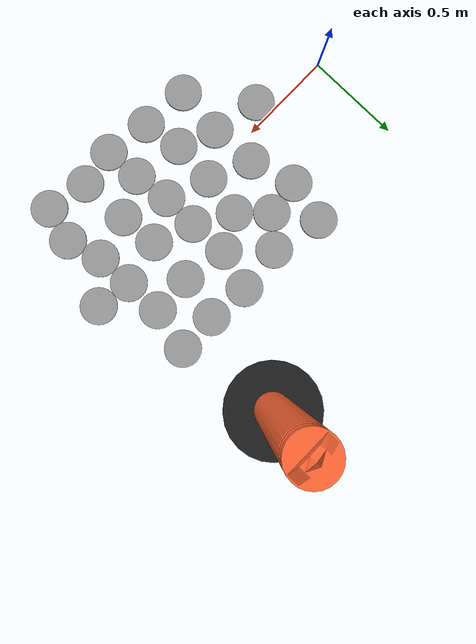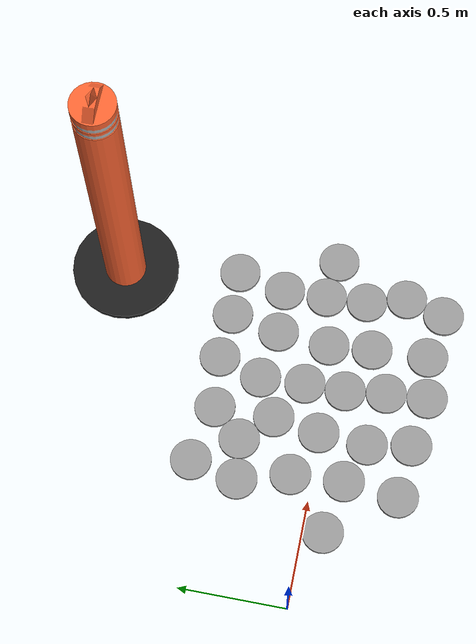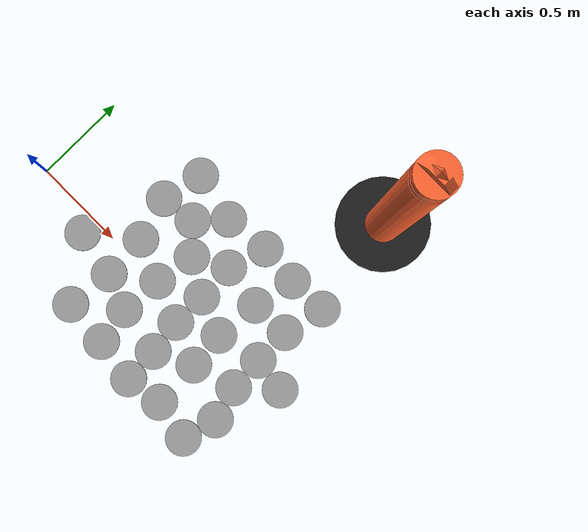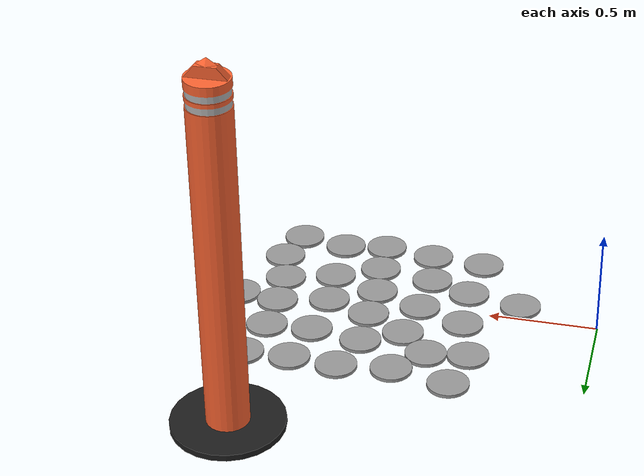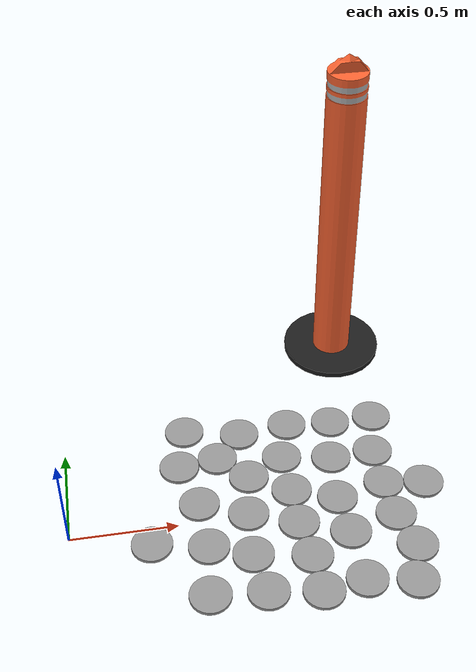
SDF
<sdf version="1.6">
 <world name="default">
  <model name="pylon_orange">
   <include><uri>model://pylon_orange</uri></include>
   <pose>1.44449 1.05156 0 0 0 -8.1e-05</pose>
  </model>
  <model name="unit_cylinder_clone_clone_123">
   <pose>0.369188 -0.09185 0.008108 0 -0 0</pose>
   <link name="link">
    <inertial>
     <mass>1</mass>
     <inertia><ixx>0.145833</ixx><ixy>0</ixy><ixz>0</ixz><iyy>0.145833</iyy><iyz>0</iyz><izz>0.125</izz></inertia>
    </inertial>
    <collision name="collision">
     <geometry><cylinder><radius>0.0950718</radius><length>0.0162339</length></cylinder></geometry>
    </collision>
    <visual name="visual">
     <geometry><cylinder><radius>0.0950718</radius><length>0.0162339</length></cylinder></geometry>
     <material>
      <script><name>Gazebo/Grey</name><uri>file://media/materials/scripts/gazebo.material</uri></script>
     </material>
    </visual>
   </link>
  </model>
  <model name="unit_cylinder_clone_clone_125">
   <pose>0.594038 -0.397589 0.008111 0 -0 0</pose>
   <link name="link">
    <inertial>
     <mass>1</mass>
     <inertia><ixx>0.145833</ixx><ixy>0</ixy><ixz>0</ixz><iyy>0.145833</iyy><iyz>0</iyz><izz>0.125</izz></inertia>
    </inertial>
    <collision name="collision">
     <geometry><cylinder><radius>0.0950718</radius><length>0.0162339</length></cylinder></geometry>
    </collision>
    <visual name="visual">
     <geometry><cylinder><radius>0.0950718</radius><length>0.0162339</length></cylinder></geometry>
     <material>
      <script><name>Gazebo/Grey</name><uri>file://media/materials/scripts/gazebo.material</uri></script>
     </material>
    </visual>
   </link>
  </model>
  <model name="unit_cylinder_clone_clone_126">
   <pose>0.621231 -0.144033 0.008107 0 -0 0</pose>
   <link name="link">
    <inertial>
     <mass>1</mass>
     <inertia><ixx>0.145833</ixx><ixy>0</ixy><ixz>0</ixz><iyy>0.145833</iyy><iyz>0</iyz><izz>0.125</izz></inertia>
    </inertial>
    <collision name="collision">
     <geometry><cylinder><radius>0.0950718</radius><length>0.0162339</length></cylinder></geometry>
    </collision>
    <visual name="visual">
     <geometry><cylinder><radius>0.0950718</radius><length>0.0162339</length></cylinder></geometry>
     <material>
      <script><name>Gazebo/Grey</name><uri>file://media/materials/scripts/gazebo.material</uri></script>
     </material>
    </visual>
   </link>
  </model>
  <model name="unit_cylinder_clone_clone_127">
   <pose>0.607874 0.101254 0.008111 0 -0 0</pose>
   <link name="link">
    <inertial>
     <mass>1</mass>
     <inertia><ixx>0.145833</ixx><ixy>0</ixy><ixz>0</ixz><iyy>0.145833</iyy><iyz>0</iyz><izz>0.125</izz></inertia>
    </inertial>
    <collision name="collision">
     <geometry><cylinder><radius>0.0950718</radius><length>0.0162339</length></cylinder></geometry>
    </collision>
    <visual name="visual">
     <geometry><cylinder><radius>0.0950718</radius><length>0.0162339</length></cylinder></geometry>
     <material>
      <script><name>Gazebo/Grey</name><uri>file://media/materials/scripts/gazebo.material</uri></script>
     </material>
    </visual>
   </link>
  </model>
  <model name="unit_cylinder_clone_clone_128">
   <pose>0.540658 0.337848 0.008116 0 -0 0.003136</pose>
   <link name="link">
    <inertial>
     <mass>1</mass>
     <inertia><ixx>0.145833</ixx><ixy>0</ixy><ixz>0</ixz><iyy>0.145833</iyy><iyz>0</iyz><izz>0.125</izz></inertia>
    </inertial>
    <collision name="collision">
     <geometry><cylinder><radius>0.0950718</radius><length>0.0162339</length></cylinder></geometry>
    </collision>
    <visual name="visual">
     <geometry><cylinder><radius>0.0950718</radius><length>0.0162339</length></cylinder></geometry>
     <material>
      <script><name>Gazebo/Grey</name><uri>file://media/materials/scripts/gazebo.material</uri></script>
     </material>
    </visual>
   </link>
  </model>
  <model name="unit_cylinder_clone_clone_129">
   <pose>0.590064 0.560114 0.008115 0 -0 0</pose>
   <link name="link">
    <inertial>
     <mass>1</mass>
     <inertia><ixx>0.145833</ixx><ixy>0</ixy><ixz>0</ixz><iyy>0.145833</iyy><iyz>0</iyz><izz>0.125</izz></inertia>
    </inertial>
    <collision name="collision">
     <geometry><cylinder><radius>0.0950718</radius><length>0.0162339</length></cylinder></geometry>
    </collision>
    <visual name="visual">
     <geometry><cylinder><radius>0.0950718</radius><length>0.0162339</length></cylinder></geometry>
     <material>
      <script><name>Gazebo/Grey</name><uri>file://media/materials/scripts/gazebo.material</uri></script>
     </material>
    </visual>
   </link>
  </model>
  <model name="unit_cylinder_clone_clone_130">
   <pose>0.857851 0.502889 0.008112 -5e-06 0 -0.000519</pose>
   <link name="link">
    <inertial>
     <mass>1</mass>
     <inertia><ixx>0.145833</ixx><ixy>0</ixy><ixz>0</ixz><iyy>0.145833</iyy><iyz>0</iyz><izz>0.125</izz></inertia>
    </inertial>
    <collision name="collision">
     <geometry><cylinder><radius>0.0950718</radius><length>0.0162339</length></cylinder></geometry>
    </collision>
    <visual name="visual">
     <geometry><cylinder><radius>0.0950718</radius><length>0.0162339</length></cylinder></geometry>
     <material>
      <script><name>Gazebo/Grey</name><uri>file://media/materials/scripts/gazebo.material</uri></script>
     </material>
    </visual>
   </link>
  </model>
  <model name="unit_cylinder_clone_clone_131">
   <pose>1.10308 0.528807 0.008108 0 -0 0</pose>
   <link name="link">
    <inertial>
     <mass>1</mass>
     <inertia><ixx>0.145833</ixx><ixy>0</ixy><ixz>0</ixz><iyy>0.145833</iyy><iyz>0</iyz><izz>0.125</izz></inertia>
    </inertial>
    <collision name="collision">
     <geometry><cylinder><radius>0.0950718</radius><length>0.0162339</length></cylinder></geometry>
    </collision>
    <visual name="visual">
     <geometry><cylinder><radius>0.0950718</radius><length>0.0162339</length></cylinder></geometry>
     <material>
      <script><name>Gazebo/Grey</name><uri>file://media/materials/scripts/gazebo.material</uri></script>
     </material>
    </visual>
   </link>
  </model>
  <model name="unit_cylinder_clone_clone_132">
   <pose>1.32275 0.511495 0.008108 0 -0 0</pose>
   <link name="link">
    <inertial>
     <mass>1</mass>
     <inertia><ixx>0.145833</ixx><ixy>0</ixy><ixz>0</ixz><iyy>0.145833</iyy><iyz>0</iyz><izz>0.125</izz></inertia>
    </inertial>
    <collision name="collision">
     <geometry><cylinder><radius>0.0950718</radius><length>0.0162339</length></cylinder></geometry>
    </collision>
    <visual name="visual">
     <geometry><cylinder><radius>0.0950718</radius><length>0.0162339</length></cylinder></geometry>
     <material>
      <script><name>Gazebo/Grey</name><uri>file://media/materials/scripts/gazebo.material</uri></script>
     </material>
    </visual>
   </link>
  </model>
  <model name="unit_cylinder_clone_clone_133">
   <pose>1.53605 0.518092 0.008108 0 -0 0</pose>
   <link name="link">
    <inertial>
     <mass>1</mass>
     <inertia><ixx>0.145833</ixx><ixy>0</ixy><ixz>0</ixz><iyy>0.145833</iyy><iyz>0</iyz><izz>0.125</izz></inertia>
    </inertial>
    <collision name="collision">
     <geometry><cylinder><radius>0.0950718</radius><length>0.0162339</length></cylinder></geometry>
    </collision>
    <visual name="visual">
     <geometry><cylinder><radius>0.0950718</radius><length>0.0162339</length></cylinder></geometry>
     <material>
      <script><name>Gazebo/Grey</name><uri>file://media/materials/scripts/gazebo.material</uri></script>
     </material>
    </visual>
   </link>
  </model>
  <model name="unit_cylinder_clone_clone_167">
   <pose>1.50136 -0.465139 0.008107 0 0 -0.001371</pose>
   <link name="link">
    <inertial>
     <mass>1</mass>
     <inertia><ixx>0.145833</ixx><ixy>0</ixy><ixz>0</ixz><iyy>0.145833</iyy><iyz>0</iyz><izz>0.125</izz></inertia>
    </inertial>
    <collision name="collision">
     <geometry><cylinder><radius>0.0950718</radius><length>0.0162339</length></cylinder></geometry>
    </collision>
    <visual name="visual">
     <geometry><cylinder><radius>0.0950718</radius><length>0.0162339</length></cylinder></geometry>
     <material>
      <script><name>Gazebo/Grey</name><uri>file://media/materials/scripts/gazebo.material</uri></script>
     </material>
    </visual>
   </link>
  </model>
  <model name="unit_cylinder_clone_clone_168">
   <pose>1.28313 -0.424276 0.008111 0 -0 0</pose>
   <link name="link">
    <inertial>
     <mass>1</mass>
     <inertia><ixx>0.145833</ixx><ixy>0</ixy><ixz>0</ixz><iyy>0.145833</iyy><iyz>0</iyz><izz>0.125</izz></inertia>
    </inertial>
    <collision name="collision">
     <geometry><cylinder><radius>0.0950718</radius><length>0.0162339</length></cylinder></geometry>
    </collision>
    <visual name="visual">
     <geometry><cylinder><radius>0.0950718</radius><length>0.0162339</length></cylinder></geometry>
     <material>
      <script><name>Gazebo/Grey</name><uri>file://media/materials/scripts/gazebo.material</uri></script>
     </material>
    </visual>
   </link>
  </model>
  <model name="unit_cylinder_clone_clone_169">
   <pose>1.08345 -0.453173 0.008117 0 0 -0.000221</pose>
   <link name="link">
    <inertial>
     <mass>1</mass>
     <inertia><ixx>0.145833</ixx><ixy>0</ixy><ixz>0</ixz><iyy>0.145833</iyy><iyz>0</iyz><izz>0.125</izz></inertia>
    </inertial>
    <collision name="collision">
     <geometry><cylinder><radius>0.0950718</radius><length>0.0162339</length></cylinder></geometry>
    </collision>
    <visual name="visual">
     <geometry><cylinder><radius>0.0950718</radius><length>0.0162339</length></cylinder></geometry>
     <material>
      <script><name>Gazebo/Grey</name><uri>file://media/materials/scripts/gazebo.material</uri></script>
     </material>
    </visual>
   </link>
  </model>
  <model name="unit_cylinder_clone_clone_170">
   <pose>0.845585 -0.418486 0.008116 0 -0 0</pose>
   <link name="link">
    <inertial>
     <mass>1</mass>
     <inertia><ixx>0.145833</ixx><ixy>0</ixy><ixz>0</ixz><iyy>0.145833</iyy><iyz>0</iyz><izz>0.125</izz></inertia>
    </inertial>
    <collision name="collision">
     <geometry><cylinder><radius>0.0950718</radius><length>0.0162339</length></cylinder></geometry>
    </collision>
    <visual name="visual">
     <geometry><cylinder><radius>0.0950718</radius><length>0.0162339</length></cylinder></geometry>
     <material>
      <script><name>Gazebo/Grey</name><uri>file://media/materials/scripts/gazebo.material</uri></script>
     </material>
    </visual>
   </link>
  </model>
  <model name="unit_cylinder_clone_clone_171">
   <pose>0.81133 -0.218066 0.008116 0 -0 0</pose>
   <link name="link">
    <inertial>
     <mass>1</mass>
     <inertia><ixx>0.145833</ixx><ixy>0</ixy><ixz>0</ixz><iyy>0.145833</iyy><iyz>0</iyz><izz>0.125</izz></inertia>
    </inertial>
    <collision name="collision">
     <geometry><cylinder><radius>0.0950718</radius><length>0.0162339</length></cylinder></geometry>
    </collision>
    <visual name="visual">
     <geometry><cylinder><radius>0.0950718</radius><length>0.0162339</length></cylinder></geometry>
     <material>
      <script><name>Gazebo/Grey</name><uri>file://media/materials/scripts/gazebo.material</uri></script>
     </material>
    </visual>
   </link>
  </model>
  <model name="unit_cylinder_clone_clone_172">
   <pose>0.826242 0.00979 0.008116 0 -0 0</pose>
   <link name="link">
    <inertial>
     <mass>1</mass>
     <inertia><ixx>0.145833</ixx><ixy>0</ixy><ixz>0</ixz><iyy>0.145833</iyy><iyz>0</iyz><izz>0.125</izz></inertia>
    </inertial>
    <collision name="collision">
     <geometry><cylinder><radius>0.0950718</radius><length>0.0162339</length></cylinder></geometry>
    </collision>
    <visual name="visual">
     <geometry><cylinder><radius>0.0950718</radius><length>0.0162339</length></cylinder></geometry>
     <material>
      <script><name>Gazebo/Grey</name><uri>file://media/materials/scripts/gazebo.material</uri></script>
     </material>
    </visual>
   </link>
  </model>
  <model name="unit_cylinder_clone_clone_173">
   <pose>0.861834 0.226743 0.008117 0 0 -0.004425</pose>
   <link name="link">
    <inertial>
     <mass>1</mass>
     <inertia><ixx>0.145833</ixx><ixy>0</ixy><ixz>0</ixz><iyy>0.145833</iyy><iyz>0</iyz><izz>0.125</izz></inertia>
    </inertial>
    <collision name="collision">
     <geometry><cylinder><radius>0.0950718</radius><length>0.0162339</length></cylinder></geometry>
    </collision>
    <visual name="visual">
     <geometry><cylinder><radius>0.0950718</radius><length>0.0162339</length></cylinder></geometry>
     <material>
      <script><name>Gazebo/Grey</name><uri>file://media/materials/scripts/gazebo.material</uri></script>
     </material>
    </visual>
   </link>
  </model>
  <model name="unit_cylinder_clone_clone_174">
   <pose>1.03906 0.323316 0.008116 0 -0 0</pose>
   <link name="link">
    <inertial>
     <mass>1</mass>
     <inertia><ixx>0.145833</ixx><ixy>0</ixy><ixz>0</ixz><iyy>0.145833</iyy><iyz>0</iyz><izz>0.125</izz></inertia>
    </inertial>
    <collision name="collision">
     <geometry><cylinder><radius>0.0950718</radius><length>0.0162339</length></cylinder></geometry>
    </collision>
    <visual name="visual">
     <geometry><cylinder><radius>0.0950718</radius><length>0.0162339</length></cylinder></geometry>
     <material>
      <script><name>Gazebo/Grey</name><uri>file://media/materials/scripts/gazebo.material</uri></script>
     </material>
    </visual>
   </link>
  </model>
  <model name="unit_cylinder_clone_clone_175">
   <pose>1.04855 0.115366 0.008108 0 0 -9e-06</pose>
   <link name="link">
    <inertial>
     <mass>1</mass>
     <inertia><ixx>0.145833</ixx><ixy>0</ixy><ixz>0</ixz><iyy>0.145833</iyy><iyz>0</iyz><izz>0.125</izz></inertia>
    </inertial>
    <collision name="collision">
     <geometry><cylinder><radius>0.0950718</radius><length>0.0162339</length></cylinder></geometry>
    </collision>
    <visual name="visual">
     <geometry><cylinder><radius>0.0950718</radius><length>0.0162339</length></cylinder></geometry>
     <material>
      <script><name>Gazebo/Grey</name><uri>file://media/materials/scripts/gazebo.material</uri></script>
     </material>
    </visual>
   </link>
  </model>
  <model name="unit_cylinder_clone_clone_176">
   <pose>1.04769 -0.074795 0.008108 0 -0 0.000803</pose>
   <link name="link">
    <inertial>
     <mass>1</mass>
     <inertia><ixx>0.145833</ixx><ixy>0</ixy><ixz>0</ixz><iyy>0.145833</iyy><iyz>0</iyz><izz>0.125</izz></inertia>
    </inertial>
    <collision name="collision">
     <geometry><cylinder><radius>0.0950718</radius><length>0.0162339</length></cylinder></geometry>
    </collision>
    <visual name="visual">
     <geometry><cylinder><radius>0.0950718</radius><length>0.0162339</length></cylinder></geometry>
     <material>
      <script><name>Gazebo/Grey</name><uri>file://media/materials/scripts/gazebo.material</uri></script>
     </material>
    </visual>
   </link>
  </model>
  <model name="unit_cylinder_clone_clone_177">
   <pose>1.27129 -0.162874 0.008108 0 -0 0</pose>
   <link name="link">
    <inertial>
     <mass>1</mass>
     <inertia><ixx>0.145833</ixx><ixy>0</ixy><ixz>0</ixz><iyy>0.145833</iyy><iyz>0</iyz><izz>0.125</izz></inertia>
    </inertial>
    <collision name="collision">
     <geometry><cylinder><radius>0.0950718</radius><length>0.0162339</length></cylinder></geometry>
    </collision>
    <visual name="visual">
     <geometry><cylinder><radius>0.0950718</radius><length>0.0162339</length></cylinder></geometry>
     <material>
      <script><name>Gazebo/Grey</name><uri>file://media/materials/scripts/gazebo.material</uri></script>
     </material>
    </visual>
   </link>
  </model>
  <model name="unit_cylinder_clone_clone_178">
   <pose>1.25379 0.03839 0.008108 0 -0 0</pose>
   <link name="link">
    <inertial>
     <mass>1</mass>
     <inertia><ixx>0.145833</ixx><ixy>0</ixy><ixz>0</ixz><iyy>0.145833</iyy><iyz>0</iyz><izz>0.125</izz></inertia>
    </inertial>
    <collision name="collision">
     <geometry><cylinder><radius>0.0950718</radius><length>0.0162339</length></cylinder></geometry>
    </collision>
    <visual name="visual">
     <geometry><cylinder><radius>0.0950718</radius><length>0.0162339</length></cylinder></geometry>
     <material>
      <script><name>Gazebo/Grey</name><uri>file://media/materials/scripts/gazebo.material</uri></script>
     </material>
    </visual>
   </link>
  </model>
  <model name="unit_cylinder_clone_clone_179">
   <pose>1.27636 0.283558 0.008116 0 -0 0</pose>
   <link name="link">
    <inertial>
     <mass>1</mass>
     <inertia><ixx>0.145833</ixx><ixy>0</ixy><ixz>0</ixz><iyy>0.145833</iyy><iyz>0</iyz><izz>0.125</izz></inertia>
    </inertial>
    <collision name="collision">
     <geometry><cylinder><radius>0.0950718</radius><length>0.0162339</length></cylinder></geometry>
    </collision>
    <visual name="visual">
     <geometry><cylinder><radius>0.0950718</radius><length>0.0162339</length></cylinder></geometry>
     <material>
      <script><name>Gazebo/Grey</name><uri>file://media/materials/scripts/gazebo.material</uri></script>
     </material>
    </visual>
   </link>
  </model>
  <model name="unit_cylinder_clone_clone_180">
   <pose>1.48633 0.293061 0.008108 0 -0 0</pose>
   <link name="link">
    <inertial>
     <mass>1</mass>
     <inertia><ixx>0.145833</ixx><ixy>0</ixy><ixz>0</ixz><iyy>0.145833</iyy><iyz>0</iyz><izz>0.125</izz></inertia>
    </inertial>
    <collision name="collision">
     <geometry><cylinder><radius>0.0950718</radius><length>0.0162339</length></cylinder></geometry>
    </collision>
    <visual name="visual">
     <geometry><cylinder><radius>0.0950718</radius><length>0.0162339</length></cylinder></geometry>
     <material>
      <script><name>Gazebo/Grey</name><uri>file://media/materials/scripts/gazebo.material</uri></script>
     </material>
    </visual>
   </link>
  </model>
  <model name="unit_cylinder_clone_clone_181">
   <pose>1.49035 0.092091 0.008116 0 -0 1.4e-05</pose>
   <link name="link">
    <inertial>
     <mass>1</mass>
     <inertia><ixx>0.145833</ixx><ixy>0</ixy><ixz>0</ixz><iyy>0.145833</iyy><iyz>0</iyz><izz>0.125</izz></inertia>
    </inertial>
    <collision name="collision">
     <geometry><cylinder><radius>0.0950718</radius><length>0.0162339</length></cylinder></geometry>
    </collision>
    <visual name="visual">
     <geometry><cylinder><radius>0.0950718</radius><length>0.0162339</length></cylinder></geometry>
     <material>
      <script><name>Gazebo/Grey</name><uri>file://media/materials/scripts/gazebo.material</uri></script>
     </material>
    </visual>
   </link>
  </model>
  <model name="unit_cylinder_clone_clone_182">
   <pose>1.50081 -0.098441 0.008112 5e-06 -0 0.007148</pose>
   <link name="link">
    <inertial>
     <mass>1</mass>
     <inertia><ixx>0.145833</ixx><ixy>0</ixy><ixz>0</ixz><iyy>0.145833</iyy><iyz>0</iyz><izz>0.125</izz></inertia>
    </inertial>
    <collision name="collision">
     <geometry><cylinder><radius>0.0950718</radius><length>0.0162339</length></cylinder></geometry>
    </collision>
    <visual name="visual">
     <geometry><cylinder><radius>0.0950718</radius><length>0.0162339</length></cylinder></geometry>
     <material>
      <script><name>Gazebo/Grey</name><uri>file://media/materials/scripts/gazebo.material</uri></script>
     </material>
    </visual>
   </link>
  </model>
  <model name="unit_cylinder_clone_clone_184">
   <pose>1.67855 0.064912 0.008117 0 -0 2.7e-05</pose>
   <link name="link">
    <inertial>
     <mass>1</mass>
     <inertia><ixx>0.145833</ixx><ixy>0</ixy><ixz>0</ixz><iyy>0.145833</iyy><iyz>0</iyz><izz>0.125</izz></inertia>
    </inertial>
    <collision name="collision">
     <geometry><cylinder><radius>0.0950718</radius><length>0.0162339</length></cylinder></geometry>
    </collision>
    <visual name="visual">
     <geometry><cylinder><radius>0.0950718</radius><length>0.0162339</length></cylinder></geometry>
     <material>
      <script><name>Gazebo/Grey</name><uri>file://media/materials/scripts/gazebo.material</uri></script>
     </material>
    </visual>
   </link>
  </model>
  <model name="unit_cylinder_clone_clone_245">
   <pose>1.55149 -0.281715 0.008111 0 -0 0.005224</pose>
   <link name="link">
    <inertial>
     <mass>1</mass>
     <inertia><ixx>0.145833</ixx><ixy>0</ixy><ixz>0</ixz><iyy>0.145833</iyy><iyz>0</iyz><izz>0.125</izz></inertia>
    </inertial>
    <collision name="collision">
     <geometry><cylinder><radius>0.0950718</radius><length>0.0162339</length></cylinder></geometry>
    </collision>
    <visual name="visual">
     <geometry><cylinder><radius>0.0950718</radius><length>0.0162339</length></cylinder></geometry>
     <material>
      <script><name>Gazebo/Grey</name><uri>file://media/materials/scripts/gazebo.material</uri></script>
     </material>
    </visual>
   </link>
  </model>
  <model name="unit_cylinder_clone_clone_246">
   <pose>1.07213 -0.263364 0.00811 0 -0 0.00057</pose>
   <link name="link">
    <inertial>
     <mass>1</mass>
     <inertia><ixx>0.145833</ixx><ixy>0</ixy><ixz>0</ixz><iyy>0.145833</iyy><iyz>0</iyz><izz>0.125</izz></inertia>
    </inertial>
    <collision name="collision">
     <geometry><cylinder><radius>0.0950718</radius><length>0.0162339</length></cylinder></geometry>
    </collision>
    <visual name="visual">
     <geometry><cylinder><radius>0.0950718</radius><length>0.0162339</length></cylinder></geometry>
     <material>
      <script><name>Gazebo/Grey</name><uri>file://media/materials/scripts/gazebo.material</uri></script>
     </material>
    </visual>
   </link>
  </model>
  <model name="unit_cylinder_clone_clone_247">
   <pose>0.72914 0.362931 0.008108 0 0 -0.001807</pose>
   <link name="link">
    <inertial>
     <mass>1</mass>
     <inertia><ixx>0.145833</ixx><ixy>0</ixy><ixz>0</ixz><iyy>0.145833</iyy><iyz>0</iyz><izz>0.125</izz></inertia>
    </inertial>
    <collision name="collision">
     <geometry><cylinder><radius>0.0950718</radius><length>0.0162339</length></cylinder></geometry>
    </collision>
    <visual name="visual">
     <geometry><cylinder><radius>0.0950718</radius><length>0.0162339</length></cylinder></geometry>
     <material>
      <script><name>Gazebo/Grey</name><uri>file://media/materials/scripts/gazebo.material</uri></script>
     </material>
    </visual>
   </link>
  </model>
 </world>
</sdf>
